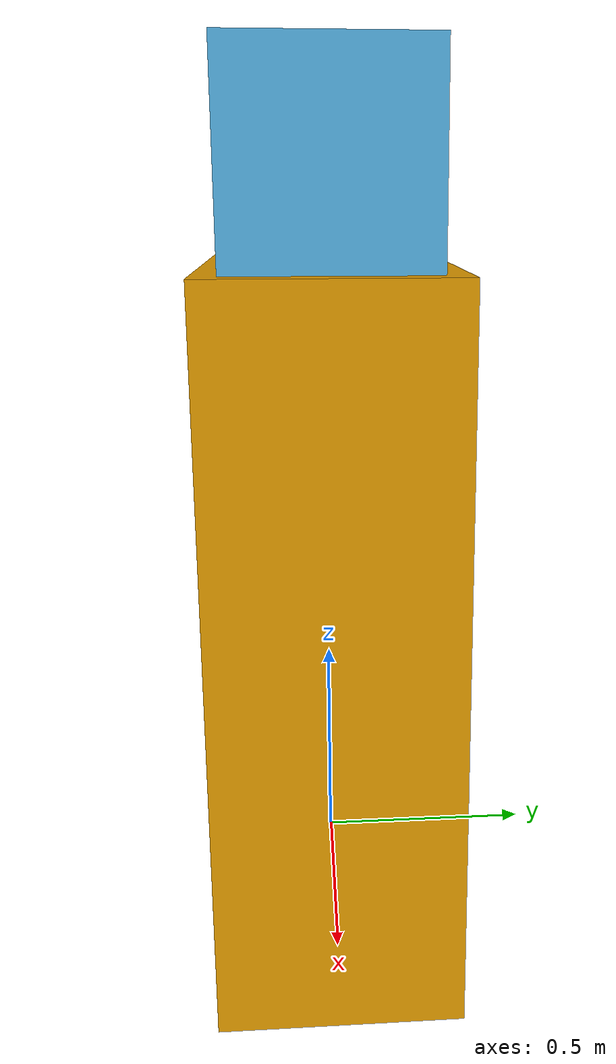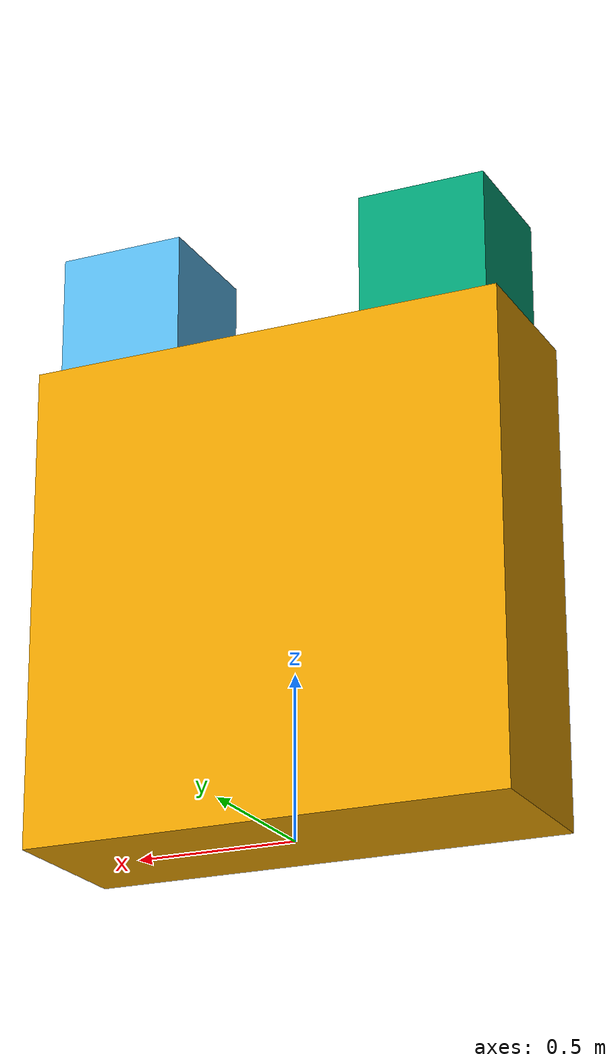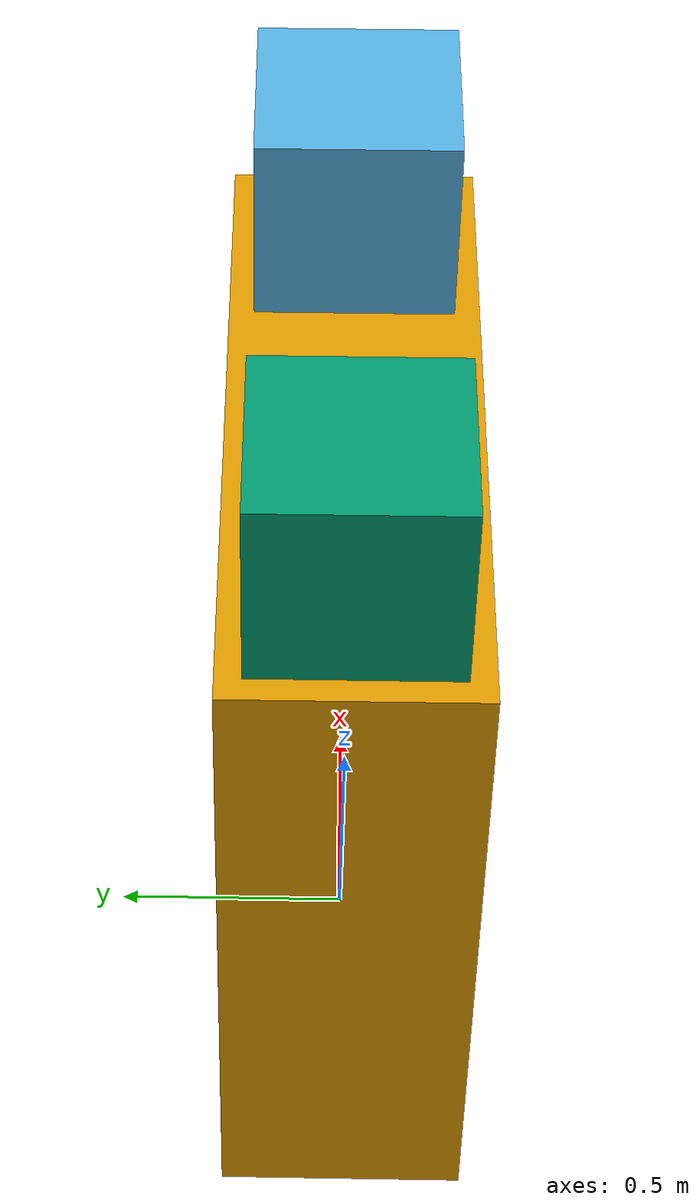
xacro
<?xml version="1.0"?>
<robot name="cartest"
    xmlns:controller="http://playerstage.sourceforge.net/gazebo/xmlschema/#controller"
    xmlns:interface="http://playerstage.sourceforge.net/gazebo/xmlschema/#interface"
    xmlns:sensor="http://playerstage.sourceforge.net/gazebo/xmlschema/#sensor"
    xmlns:xacro="http://ros.org/wiki/xacro">
    <link name="body">
        <visual>
            <origin xyz="0 0 0.75" rpy="0 0 0" />
            <geometry>
                <box size="1.5 0.5 1.5" />
            </geometry>
        </visual>
        <collision name="front_omnileg">
            <origin xyz="0 0 0.75" rpy="0 0 0" />
            <geometry>
                <box size="1.5 0.5 1.5" />
            </geometry>
        </collision>
        <inertial>
            <mass value="8.0"/>
            <inertia ixx="0.4" ixy="0.0" ixz="0.0" iyy="0.4" iyz="0.0" izz="0.2"/>
        </inertial>
    </link>
    <joint name="joint_name" type="fixed">
        <origin xyz="0.5 0 1.7" rpy="0.0 0.0 1.57"/>
        <parent link="body"/>
        <child link="cameraone"/>
    </joint>
    <link name="cameraone">
        <visual>
            <origin xyz="0 0 0" rpy="0 0 0" />
            <geometry>
                <box size="0.4 0.4 0.4" />
            </geometry>
        </visual>
        <collision name="front">
            <origin xyz="0 0 1.6" rpy="0 0 0" />
            <geometry>
                <box size="0.4 0.4 0.4" />
            </geometry>
        </collision>
        <inertial>
            <mass value="8.0"/>
            <inertia ixx="0.4" ixy="0.0" ixz="0.0" iyy="0.4" iyz="0.0" izz="0.2"/>
        </inertial>
    </link>
    <joint name="joint_nametwo" type="fixed">
        <origin xyz="-0.5 0 1.7" rpy="0.0 0.0 1.57"/>
        <parent link="body"/>
        <child link="cameratwo"/>
    </joint>
    <link name="cameratwo">
        <visual>
            <origin xyz="0 0 0" rpy="0 0 0" />
            <geometry>
                <box size="0.4 0.4 0.4" />
            </geometry>
        </visual>
        <collision name="omnileg">
            <origin xyz="0 0 0" rpy="0 0 0" />
            <geometry>
                <box size="0.4 0.4 0.4" />
            </geometry>
        </collision>
        <inertial>
            <mass value="8.0"/>
            <inertia ixx="0.4" ixy="0.0" ixz="0.0" iyy="0.4" iyz="0.0" izz="0.2"/>
        </inertial>
    </link>
    <gazebo reference="cameraone">
        <sensor type="camera" name="cameraone">
            <update_rate>30.0</update_rate>
            <camera name="cameraone">
                <horizontal_fov>1.3962634</horizontal_fov>
                <image>
                    <width>800</width>
                    <height>800</height>
                    <format>R8G8B8</format>
                </image>
                <clip>
                    <near>0.02</near>
                    <far>300</far>
                </clip>
                <noise>
                    <type>gaussian</type>
                    <!-- Noise is sampled independently per pixel on each frame.
               That pixel's noise value is added to each of its color
               channels, which at that point lie in the range [0,1]. -->
                    <mean>0.0</mean>
                    <stddev>0.007</stddev>
                </noise>
            </camera>
            <plugin name="camera_controller" filename="libgazebo_ros_camera.so">
                <alwaysOn>true</alwaysOn>
                <updateRate>0.0</updateRate>
                <cameraName>rrbot/camera1One</cameraName>
                <imageTopicName>image_rawOne</imageTopicName>
                <cameraInfoTopicName>camera_infoOne</cameraInfoTopicName>
                <frameName>camera_link_opticalOne</frameName>
                <!-- setting hackBaseline to anything but 0.0 will cause a misalignment
            between the gazebo sensor image and the frame it is supposed to
            be attached to -->
                <hackBaseline>0.0</hackBaseline>
                <distortionK1>0.0</distortionK1>
                <distortionK2>0.0</distortionK2>
                <distortionK3>0.0</distortionK3>
                <distortionT1>0.0</distortionT1>
                <distortionT2>0.0</distortionT2>
                <CxPrime>0</CxPrime>
                <Cx>0.0</Cx>
                <Cy>0.0</Cy>
                <focalLength>0.0</focalLength>
            </plugin>
        </sensor>
    </gazebo>
    <gazebo reference="cameratwo">
        <sensor type="camera" name="cameratwo">
            <update_rate>30.0</update_rate>
            <camera name="cameratwo">
                <horizontal_fov>1.3962634</horizontal_fov>
                <image>
                    <width>800</width>
                    <height>800</height>
                    <format>R8G8B8</format>
                </image>
                <clip>
                    <near>0.02</near>
                    <far>300</far>
                </clip>
                <noise>
                    <type>gaussian</type>
                    <!-- Noise is sampled independently per pixel on each frame.
               That pixel's noise value is added to each of its color
               channels, which at that point lie in the range [0,1]. -->
                    <mean>0.0</mean>
                    <stddev>0.007</stddev>
                </noise>
            </camera>
            <plugin name="camera_controller" filename="libgazebo_ros_camera.so">
                <alwaysOn>true</alwaysOn>
                <updateRate>0.0</updateRate>
                <cameraName>rrbot/camera1Two</cameraName>
                <imageTopicName>image_rawTwo</imageTopicName>
                <cameraInfoTopicName>camera_infoTwo</cameraInfoTopicName>
                <frameName>camera_link_opticalTwo</frameName>
                <!-- setting hackBaseline to anything but 0.0 will cause a misalignment
            between the gazebo sensor image and the frame it is supposed to
            be attached to -->
                <hackBaseline>0.0</hackBaseline>
                <distortionK1>0.0</distortionK1>
                <distortionK2>0.0</distortionK2>
                <distortionK3>0.0</distortionK3>
                <distortionT1>0.0</distortionT1>
                <distortionT2>0.0</distortionT2>
                <CxPrime>0</CxPrime>
                <Cx>0.0</Cx>
                <Cy>0.0</Cy>
                <focalLength>0.0</focalLength>
            </plugin>
        </sensor>
    </gazebo>
    <gazebo>
        <plugin name="gazebo_ros_control" filename="libgazebo_ros_control.so">
            <robotNamespace>/</robotNamespace>
        </plugin>
    </gazebo>
</robot>
